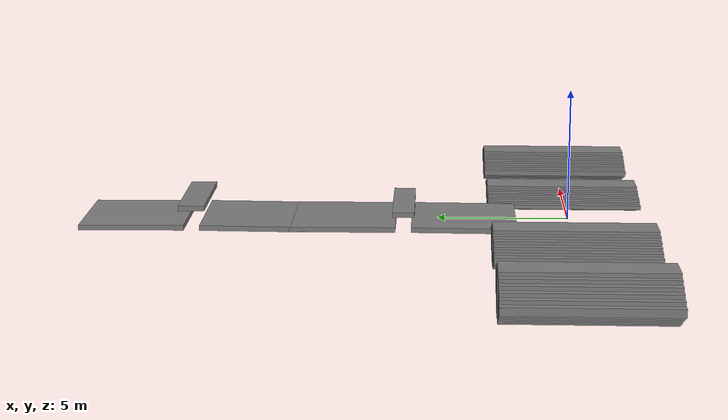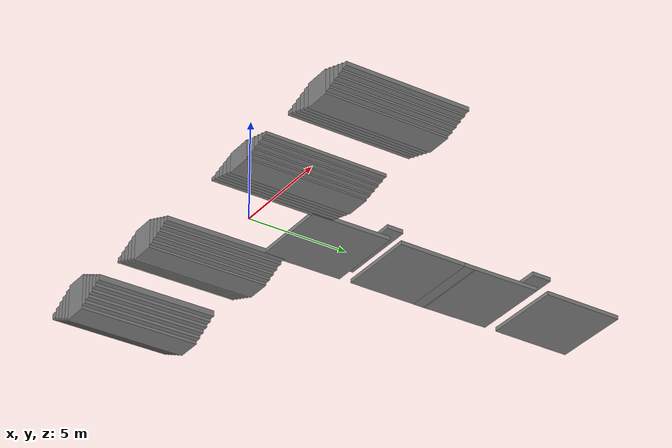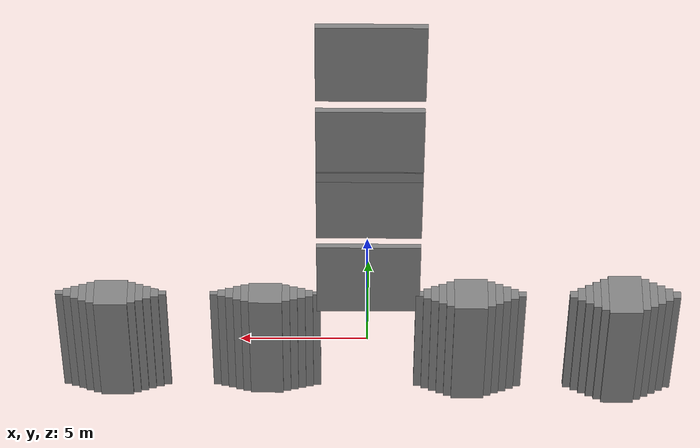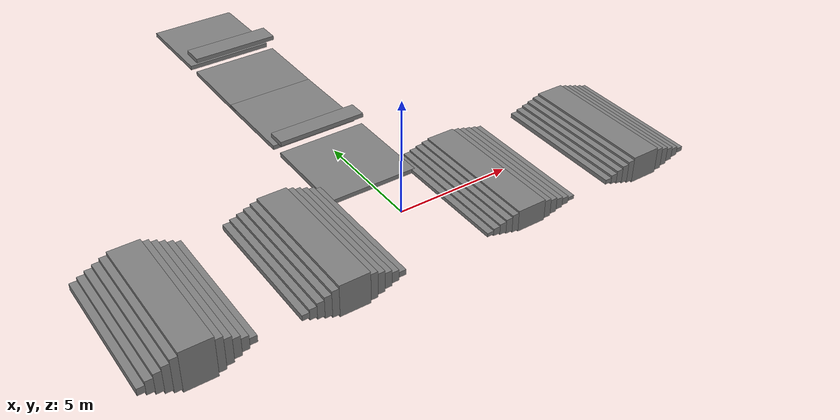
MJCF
<mujoco model="stair1">
  <statistic center="1.0 0.7 1.0" extent="0.8"/>

  <worldbody>
    <geom pos="2.0 0.0 0" type="box"  size="0.15 3 0.08"/>
    <geom pos="2.3 0.0 0" type="box"  size="0.15 3 0.16"/>
    <geom pos="2.6 0.0 0" type="box"  size="0.15 3 0.24"/>
    <geom pos="2.9 0.0 0" type="box"  size="0.15 3 0.32"/>
    <geom pos="3.2 0.0 0" type="box"  size="0.15 3 0.40"/>
    <geom pos="4.0 0.0 0" type="box"  size="0.65 3 0.48"/>
    <geom pos="4.8 0.0 0" type="box"  size="0.15 3 0.40"/>
    <geom pos="5.1 0.0 0" type="box"  size="0.15 3 0.32"/>
    <geom pos="5.4 0.0 0" type="box"  size="0.15 3 0.24"/>
    <geom pos="5.7 0.0 0" type="box"  size="0.15 3 0.16"/>
    <geom pos="6.0 0.0 0" type="box"  size="0.15 3 0.08"/>

    <geom pos="8.0 0.0 0" type="box"  size="0.15 3 0.1"/>
    <geom pos="8.3 0.0 0" type="box"  size="0.15 3 0.2"/>
    <geom pos="8.6 0.0 0" type="box"  size="0.15 3 0.3"/>
    <geom pos="8.9 0.0 0" type="box"  size="0.15 3 0.4"/>
    <geom pos="9.2 0.0 0" type="box"  size="0.15 3 0.5"/>
    <geom pos="10.0 0.0 0" type="box"  size="0.65 3 0.6"/>
    <geom pos="10.8 0.0 0" type="box"  size="0.15 3 0.5"/>
    <geom pos="11.1 0.0 0" type="box"  size="0.15 3 0.4"/>
    <geom pos="11.4 0.0 0" type="box"  size="0.15 3 0.3"/>
    <geom pos="11.7 0.0 0" type="box"  size="0.15 3 0.2"/>
    <geom pos="12.0 0.0 0" type="box"  size="0.15 3 0.1"/>

    <geom pos="-2.0 0.0 0" type="box"  size="0.15 3 0.12"/>
    <geom pos="-2.3 0.0 0" type="box"  size="0.15 3 0.24"/>
    <geom pos="-2.6 0.0 0" type="box"  size="0.15 3 0.36"/>
    <geom pos="-2.9 0.0 0" type="box"  size="0.15 3 0.48"/>
    <geom pos="-3.2 0.0 0" type="box"  size="0.15 3 0.60"/>
    <geom pos="-4.0 0.0 0" type="box"  size="0.65 3 0.72"/>
    <geom pos="-4.8 0.0 0" type="box"  size="0.15 3 0.60"/>
    <geom pos="-5.1 0.0 0" type="box"  size="0.15 3 0.48"/>
    <geom pos="-5.4 0.0 0" type="box"  size="0.15 3 0.36"/>
    <geom pos="-5.7 0.0 0" type="box"  size="0.15 3 0.24"/>
    <geom pos="-6.0 0.0 0" type="box"  size="0.15 3 0.12"/>

    <geom pos="-8.0 0.0 0" type="box"  size="0.15 3 0.15"/>
    <geom pos="-8.3 0.0 0" type="box"  size="0.15 3 0.30"/>
    <geom pos="-8.6 0.0 0" type="box"  size="0.15 3 0.45"/>
    <geom pos="-8.9 0.0 0" type="box"  size="0.15 3 0.60"/>
    <geom pos="-9.2 0.0 0" type="box"  size="0.15 3 0.75"/>
    <geom pos="-10.0 0.0 0" type="box"  size="0.65 3 0.90"/>
    <geom pos="-10.8 0.0 0" type="box"  size="0.15 3 0.75"/>
    <geom pos="-11.1 0.0 0" type="box"  size="0.15 3 0.60"/>
    <geom pos="-11.4 0.0 0" type="box"  size="0.15 3 0.45"/>
    <geom pos="-11.7 0.0 0" type="box"  size="0.15 3 0.30"/>
    <geom pos="-12.0 0.0 0" type="box"  size="0.15 3 0.15"/>

    <geom pos="0.0 4.0 0.00" type="box"  size="2.00 2 0.1" euler="0.3 0 0"/>
    <geom pos="0.0 6.3 0.59" type="box"  size="2.00 0.42 0.1" euler=" 0.0 0 0"/>
    <geom pos="0.0 8.6 0.00" type="box"  size="2.00 2 0.1" euler="-0.3 0 0"/>

    <geom pos="0.0 12.0 0.00" type="box"  size="2.00 2 0.1" euler="0.4 0 0"/>
    <geom pos="0.0 14.3 0.77" type="box"  size="2.00 0.5 0.1" euler=" 0.0 0 0"/>
    <geom pos="0.0 16.6 0.00" type="box"  size="2.00 2 0.1" euler="-0.4 0 0"/>

  </worldbody>
</mujoco>
